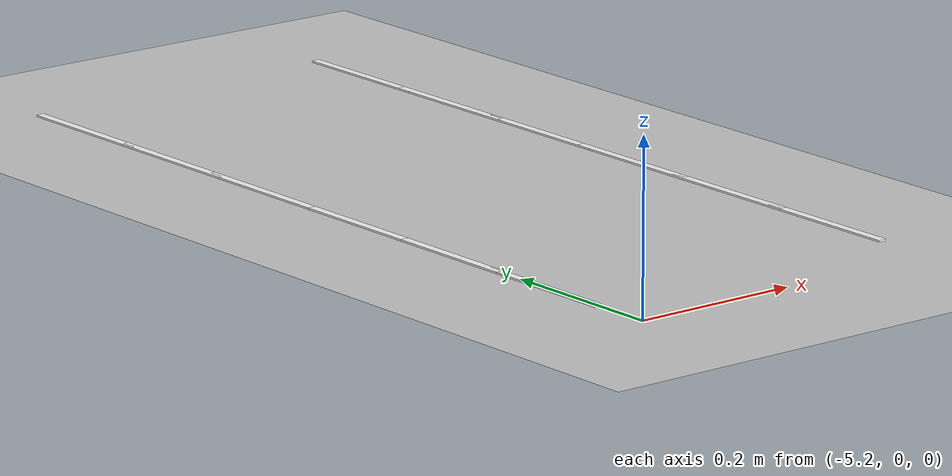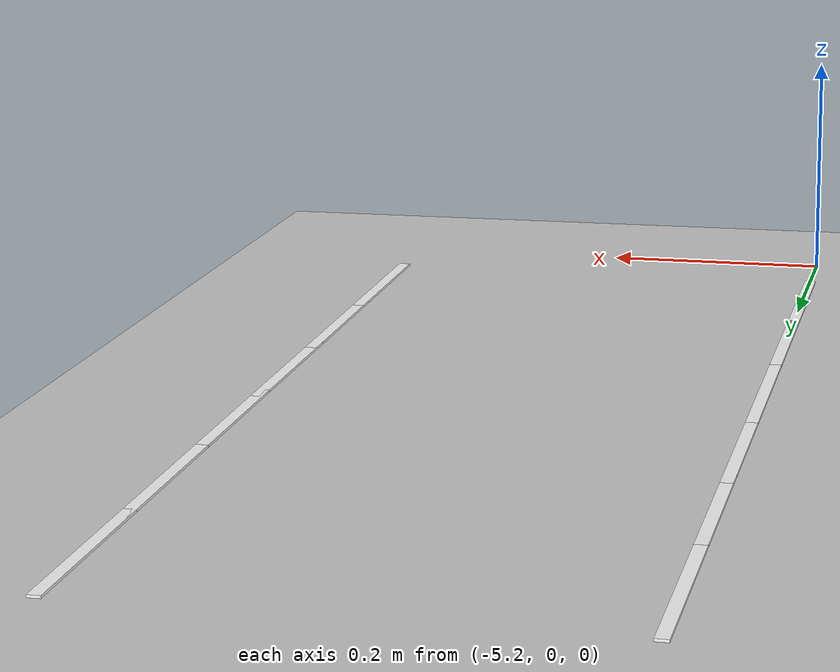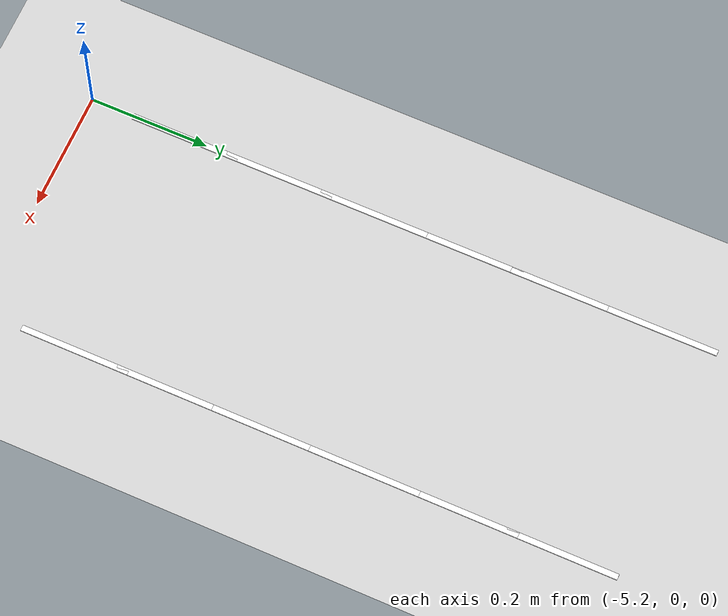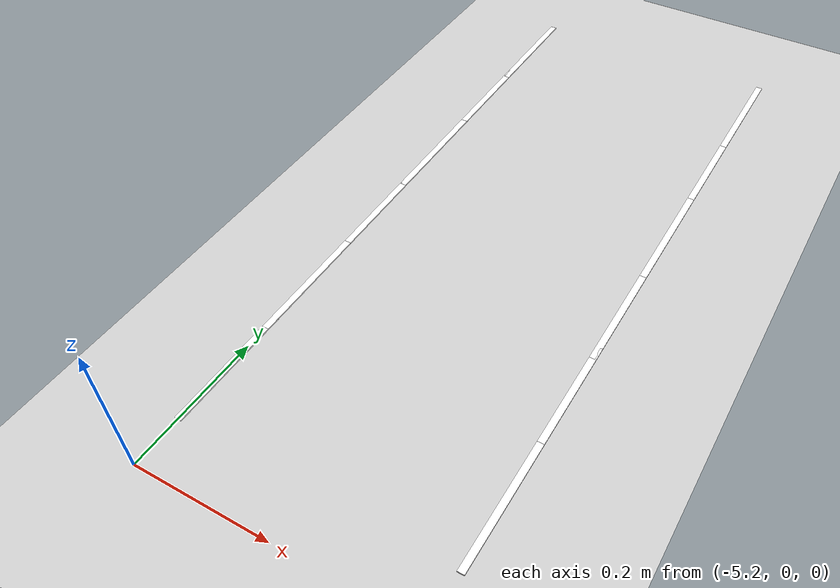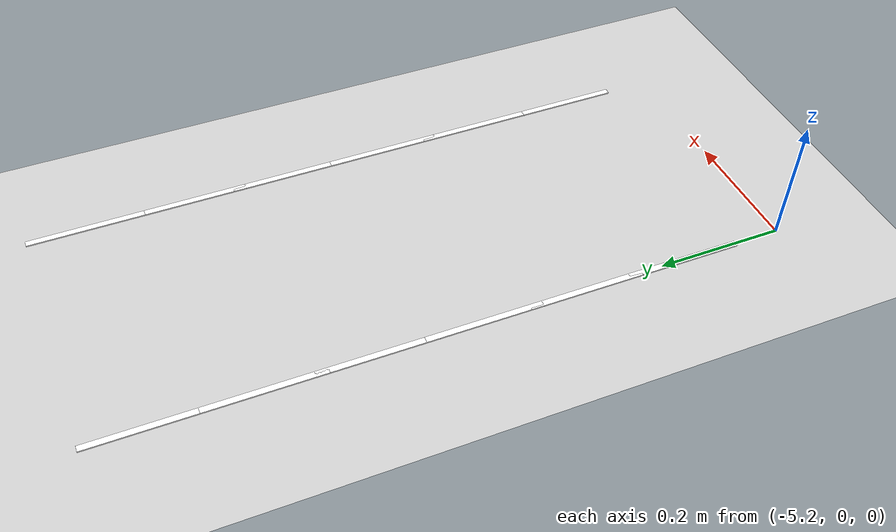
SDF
<sdf version="1.7">
 <world name="default">
  <model name="ground_plane">
   <static>1</static>
   <link name="link">
    <collision name="collision">
     <geometry><plane><normal>0 0 1</normal><size>100 100</size></plane></geometry>
     <surface>
      <contact><collide_bitmask>65535</collide_bitmask></contact>
      <friction><ode><mu>100</mu><mu2>50</mu2></ode></friction>
     </surface>
    </collision>
    <visual name="visual">
     <cast_shadows>0</cast_shadows>
     <geometry><plane><normal>0 0 1</normal><size>100 100</size></plane></geometry>
     <material>
      <script><uri>file://media/materials/scripts/gazebo.material</uri><name>Gazebo/Grey</name></script>
     </material>
    </visual>
   </link>
  </model>
  <model name="lane_line_left_318">
   <static>1</static>
   <link name="link">
    <pose>0 0 -0.004 0 -0 0</pose>
    <visual name="visual">
     <geometry><box><size>0.1833 0.01 0.01</size></box></geometry>
     <material><ambient>1 1 1 1</ambient><diffuse>1 1 1 1</diffuse></material>
    </visual>
    <collision name="collision"><geometry><box><size>0.1833 0.01 0.01</size></box></geometry></collision>
   </link>
   <pose>-4.8 0.979592 0 0 0 -1.5708</pose>
  </model>
  <model name="lane_line_right_318">
   <static>1</static>
   <link name="link">
    <pose>0 0 -0.004 0 -0 0</pose>
    <visual name="visual">
     <geometry><box><size>0.1833 0.01 0.01</size></box></geometry>
     <material><ambient>1 1 1 1</ambient><diffuse>1 1 1 1</diffuse></material>
    </visual>
    <collision name="collision"><geometry><box><size>0.1833 0.01 0.01</size></box></geometry></collision>
   </link>
   <pose>-5.2 0.979592 0 0 0 -1.5708</pose>
  </model>
  <model name="lane_line_left_319">
   <static>1</static>
   <link name="link">
    <pose>0 0 -0.004 0 -0 0</pose>
    <visual name="visual">
     <geometry><box><size>0.1833 0.01 0.01</size></box></geometry>
     <material><ambient>1 1 1 1</ambient><diffuse>1 1 1 1</diffuse></material>
    </visual>
    <collision name="collision"><geometry><box><size>0.1833 0.01 0.01</size></box></geometry></collision>
   </link>
   <pose>-4.8 0.816327 0 0 0 -1.5708</pose>
  </model>
  <model name="lane_line_right_319">
   <static>1</static>
   <link name="link">
    <pose>0 0 -0.004 0 -0 0</pose>
    <visual name="visual">
     <geometry><box><size>0.1833 0.01 0.01</size></box></geometry>
     <material><ambient>1 1 1 1</ambient><diffuse>1 1 1 1</diffuse></material>
    </visual>
    <collision name="collision"><geometry><box><size>0.1833 0.01 0.01</size></box></geometry></collision>
   </link>
   <pose>-5.2 0.816327 0 0 0 -1.5708</pose>
  </model>
  <model name="lane_line_left_320">
   <static>1</static>
   <link name="link">
    <pose>0 0 -0.004 0 -0 0</pose>
    <visual name="visual">
     <geometry><box><size>0.1833 0.01 0.01</size></box></geometry>
     <material><ambient>1 1 1 1</ambient><diffuse>1 1 1 1</diffuse></material>
    </visual>
    <collision name="collision"><geometry><box><size>0.1833 0.01 0.01</size></box></geometry></collision>
   </link>
   <pose>-4.8 0.653061 0 0 0 -1.5708</pose>
  </model>
  <model name="lane_line_right_320">
   <static>1</static>
   <link name="link">
    <pose>0 0 -0.004 0 -0 0</pose>
    <visual name="visual">
     <geometry><box><size>0.1833 0.01 0.01</size></box></geometry>
     <material><ambient>1 1 1 1</ambient><diffuse>1 1 1 1</diffuse></material>
    </visual>
    <collision name="collision"><geometry><box><size>0.1833 0.01 0.01</size></box></geometry></collision>
   </link>
   <pose>-5.2 0.653061 0 0 0 -1.5708</pose>
  </model>
  <model name="lane_line_left_321">
   <static>1</static>
   <link name="link">
    <pose>0 0 -0.004 0 -0 0</pose>
    <visual name="visual">
     <geometry><box><size>0.1833 0.01 0.01</size></box></geometry>
     <material><ambient>1 1 1 1</ambient><diffuse>1 1 1 1</diffuse></material>
    </visual>
    <collision name="collision"><geometry><box><size>0.1833 0.01 0.01</size></box></geometry></collision>
   </link>
   <pose>-4.8 0.489796 0 0 0 -1.5708</pose>
  </model>
  <model name="lane_line_right_321">
   <static>1</static>
   <link name="link">
    <pose>0 0 -0.004 0 -0 0</pose>
    <visual name="visual">
     <geometry><box><size>0.1833 0.01 0.01</size></box></geometry>
     <material><ambient>1 1 1 1</ambient><diffuse>1 1 1 1</diffuse></material>
    </visual>
    <collision name="collision"><geometry><box><size>0.1833 0.01 0.01</size></box></geometry></collision>
   </link>
   <pose>-5.2 0.489796 0 0 0 -1.5708</pose>
  </model>
  <model name="lane_line_left_322">
   <static>1</static>
   <link name="link">
    <pose>0 0 -0.004 0 -0 0</pose>
    <visual name="visual">
     <geometry><box><size>0.1833 0.01 0.01</size></box></geometry>
     <material><ambient>1 1 1 1</ambient><diffuse>1 1 1 1</diffuse></material>
    </visual>
    <collision name="collision"><geometry><box><size>0.1833 0.01 0.01</size></box></geometry></collision>
   </link>
   <pose>-4.8 0.326531 0 0 0 -1.5708</pose>
  </model>
  <model name="lane_line_right_322">
   <static>1</static>
   <link name="link">
    <pose>0 0 -0.004 0 -0 0</pose>
    <visual name="visual">
     <geometry><box><size>0.1833 0.01 0.01</size></box></geometry>
     <material><ambient>1 1 1 1</ambient><diffuse>1 1 1 1</diffuse></material>
    </visual>
    <collision name="collision"><geometry><box><size>0.1833 0.01 0.01</size></box></geometry></collision>
   </link>
   <pose>-5.2 0.326531 0 0 0 -1.5708</pose>
  </model>
  <model name="lane_line_left_323">
   <static>1</static>
   <link name="link">
    <pose>0 0 -0.004 0 -0 0</pose>
    <visual name="visual">
     <geometry><box><size>0.1833 0.01 0.01</size></box></geometry>
     <material><ambient>1 1 1 1</ambient><diffuse>1 1 1 1</diffuse></material>
    </visual>
    <collision name="collision"><geometry><box><size>0.1833 0.01 0.01</size></box></geometry></collision>
   </link>
   <pose>-4.8 0.163265 0 0 0 -1.5708</pose>
  </model>
  <model name="lane_line_right_323">
   <static>1</static>
   <link name="link">
    <pose>0 0 -0.004 0 -0 0</pose>
    <visual name="visual">
     <geometry><box><size>0.1833 0.01 0.01</size></box></geometry>
     <material><ambient>1 1 1 1</ambient><diffuse>1 1 1 1</diffuse></material>
    </visual>
    <collision name="collision"><geometry><box><size>0.1833 0.01 0.01</size></box></geometry></collision>
   </link>
   <pose>-5.2 0.163265 0 0 0 -1.5708</pose>
  </model>
 </world>
</sdf>
